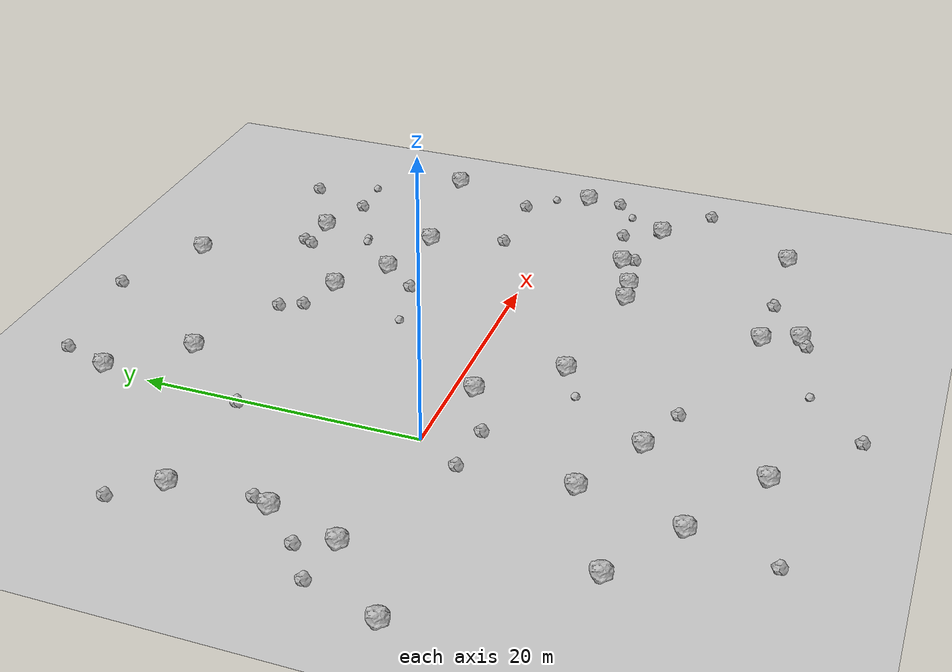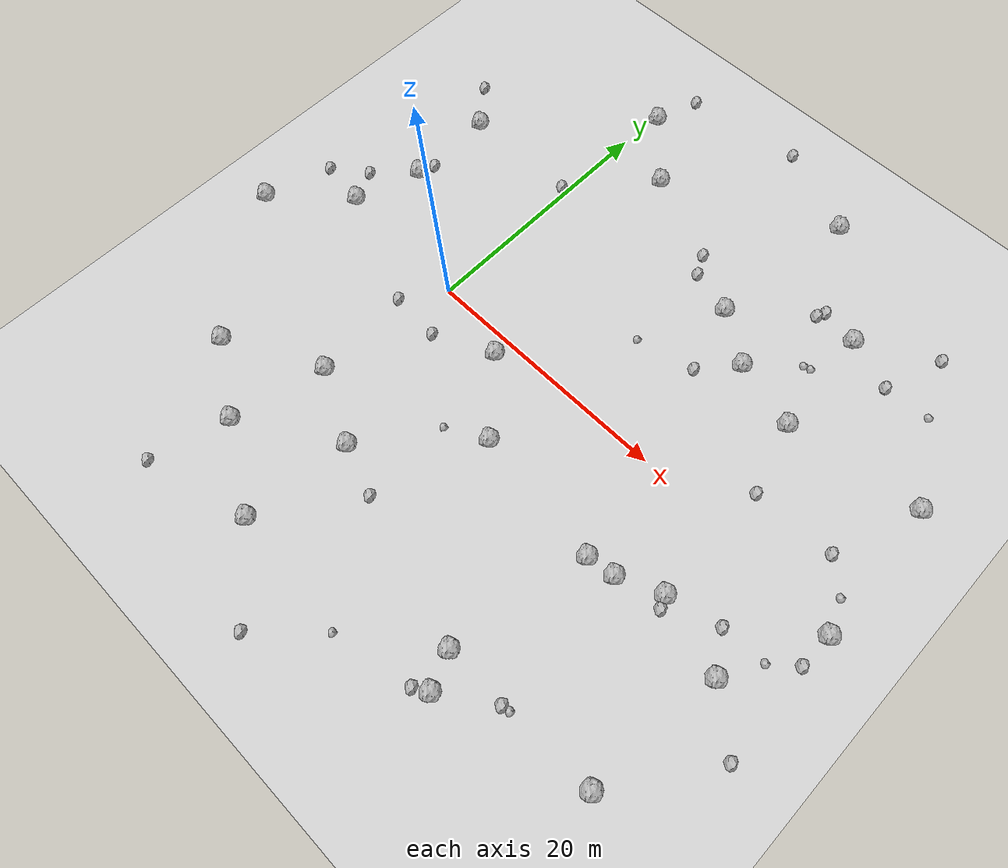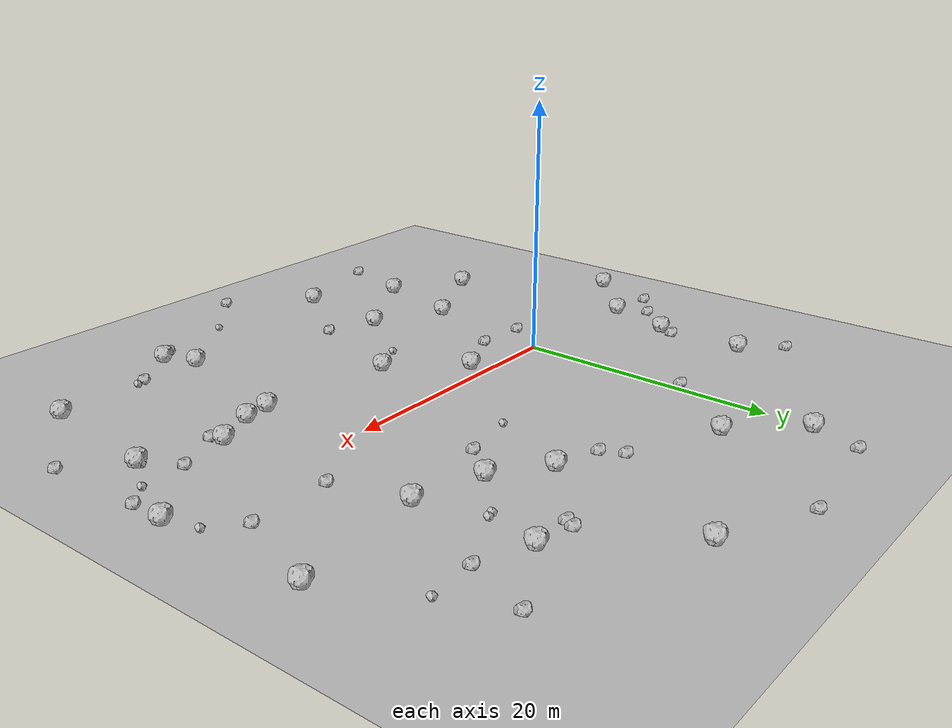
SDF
<sdf version="1.6">
 <world name="default">
  <include><uri>model://custom_ground</uri></include>
  <include><uri>model://sun</uri></include>
  <model name="rock1_0_0">
   <include><uri>model://rock1</uri><pose>0.4258869454625369 23.590470072798105 0.5 0 0 0</pose></include>
  </model>
  <model name="rock1_0_1">
   <include><uri>model://rock1</uri><pose>19.593265105103114 -18.298277100051422 0.5 0 0 0</pose></include>
  </model>
  <model name="rock1_0_2">
   <include><uri>model://rock1</uri><pose>-16.94204677330664 -4.062053096084782 0.5 0 0 0</pose></include>
  </model>
  <model name="rock1_0_3">
   <include><uri>model://rock1</uri><pose>35.865705066333454 10.217412509012853 0.5 0 0 0</pose></include>
  </model>
  <model name="rock1_0_4">
   <include><uri>model://rock1</uri><pose>4.186541190510887 -13.64281464550401 0.5 0 0 0</pose></include>
  </model>
  <model name="rock1_0_5">
   <include><uri>model://rock1</uri><pose>6.490779707301343 -1.3936061773794997 0.5 0 0 0</pose></include>
  </model>
  <model name="rock1_0_6">
   <include><uri>model://rock1</uri><pose>-1.532602621004461 -10.863521144166889 0.5 0 0 0</pose></include>
  </model>
  <model name="rock1_0_7">
   <include><uri>model://rock1</uri><pose>4.838600294089293 18.921575695923337 0.5 0 0 0</pose></include>
  </model>
  <model name="rock1_0_8">
   <include><uri>model://rock1</uri><pose>3.329555757908583 -21.830897044470593 0.5 0 0 0</pose></include>
  </model>
  <model name="rock1_0_9">
   <include><uri>model://rock1</uri><pose>11.104347467266237 -6.468998096717641 0.5 0 0 0</pose></include>
  </model>
  <model name="rock1_0_10">
   <include><uri>model://rock1</uri><pose>20.6625484039887 -20.903766457927855 0.5 0 0 0</pose></include>
  </model>
  <model name="rock1_0_11">
   <include><uri>model://rock1</uri><pose>17.987158346463147 25.176678825588972 0.5 0 0 0</pose></include>
  </model>
  <model name="rock1_0_12">
   <include><uri>model://rock1</uri><pose>25.463818453228534 8.960188977422256 0.5 0 0 0</pose></include>
  </model>
  <model name="rock1_0_13">
   <include><uri>model://rock1</uri><pose>-11.493227394271937 0.7471499509731174 0.5 0 0 0</pose></include>
  </model>
  <model name="rock1_0_14">
   <include><uri>model://rock1</uri><pose>-9.861687507869286 5.99554561775021 0.5 0 0 0</pose></include>
  </model>
  <model name="rock1_0_15">
   <include><uri>model://rock1</uri><pose>-8.946502069080402 -14.551512535602669 0.5 0 0 0</pose></include>
  </model>
  <model name="rock1_0_16">
   <include><uri>model://rock1</uri><pose>32.932538366023955 -7.910678944588451 0.5 0 0 0</pose></include>
  </model>
  <model name="rock1_0_17">
   <include><uri>model://rock1</uri><pose>31.746079077972198 -18.080295306039815 0.5 0 0 0</pose></include>
  </model>
  <model name="rock1_0_18">
   <include><uri>model://rock1</uri><pose>16.268638155541083 13.162128377371204 0.5 0 0 0</pose></include>
  </model>
  <model name="rock1_0_19">
   <include><uri>model://rock1</uri><pose>-9.906931575312157 12.962322399608539 0.5 0 0 0</pose></include>
  </model>
  <model name="rock1_0_20">
   <include><uri>model://rock1</uri><pose>-3.2731884722957467 -18.08198719907032 0.5 0 0 0</pose></include>
  </model>
  <model name="rock1_0_21">
   <include><uri>model://rock1</uri><pose>23.93849883882006 -7.529160160370676 0.5 0 0 0</pose></include>
  </model>
  <model name="rock1_0_22">
   <include><uri>model://rock1</uri><pose>20.147349211679114 10.437314945607682 0.5 0 0 0</pose></include>
  </model>
  <model name="rock1_0_23">
   <include><uri>model://rock1</uri><pose>21.786709616385103 -7.823435827018798 0.5 0 0 0</pose></include>
  </model>
  <model name="rock1_0_24">
   <include><uri>model://rock1</uri><pose>24.819069499509077 17.64397388436653 0.5 0 0 0</pose></include>
  </model>
  <model name="rock1_0_25">
   <include><uri>model://rock1</uri><pose>27.183809682259003 -6.147903388154386 0.5 0 0 0</pose></include>
  </model>
  <model name="rock1_0_26">
   <include><uri>model://rock1</uri><pose>36.44452362905187 -0.8603012842579325 0.5 0 0 0</pose></include>
  </model>
  <model name="rock2_0_0">
   <include><uri>model://rock2</uri><pose>36.74653862486327 -11.099335003345274 0.3 0 0 0</pose></include>
  </model>
  <model name="rock2_0_1">
   <include><uri>model://rock2</uri><pose>12.752762448049282 14.190941927365316 0.3 0 0 0</pose></include>
  </model>
  <model name="rock2_0_2">
   <include><uri>model://rock2</uri><pose>27.559285180786205 -7.045418463428039 0.3 0 0 0</pose></include>
  </model>
  <model name="rock2_0_3">
   <include><uri>model://rock2</uri><pose>-12.643349906243518 3.159417456817927 0.3 0 0 0</pose></include>
  </model>
  <model name="rock2_0_4">
   <include><uri>model://rock2</uri><pose>10.973704333424198 28.373084472510897 0.3 0 0 0</pose></include>
  </model>
  <model name="rock2_0_5">
   <include><uri>model://rock2</uri><pose>8.173398960551783 -15.024386599141245 0.3 0 0 0</pose></include>
  </model>
  <model name="rock2_0_6">
   <include><uri>model://rock2</uri><pose>36.374686372238365 -3.545614506958067 0.3 0 0 0</pose></include>
  </model>
  <model name="rock2_0_7">
   <include><uri>model://rock2</uri><pose>33.36197876264485 3.6057587444407986 0.3 0 0 0</pose></include>
  </model>
  <model name="rock2_0_8">
   <include><uri>model://rock2</uri><pose>-12.417822318014144 15.921073528240115 0.3 0 0 0</pose></include>
  </model>
  <model name="rock2_0_9">
   <include><uri>model://rock2</uri><pose>24.39194947493847 -18.37083913707145 0.3 0 0 0</pose></include>
  </model>
  <model name="rock2_0_10">
   <include><uri>model://rock2</uri><pose>11.95122738227418 15.795883297621657 0.3 0 0 0</pose></include>
  </model>
  <model name="rock2_0_11">
   <include><uri>model://rock2</uri><pose>-2.1000453734531597 -3.190249576710645 0.3 0 0 0</pose></include>
  </model>
  <model name="rock2_0_12">
   <include><uri>model://rock2</uri><pose>1.9434485988709191 -3.484406953018258 0.3 0 0 0</pose></include>
  </model>
  <model name="rock2_0_13">
   <include><uri>model://rock2</uri><pose>-15.331597219395531 1.2382849415534807 0.3 0 0 0</pose></include>
  </model>
  <model name="rock2_0_14">
   <include><uri>model://rock2</uri><pose>17.819777052576868 7.75673685936431 0.3 0 0 0</pose></include>
  </model>
  <model name="rock2_0_15">
   <include><uri>model://rock2</uri><pose>9.129438965702917 -26.823179746083493 0.3 0 0 0</pose></include>
  </model>
  <model name="rock2_0_16">
   <include><uri>model://rock2</uri><pose>27.084671648839304 3.442530866274076 0.3 0 0 0</pose></include>
  </model>
  <model name="rock2_0_17">
   <include><uri>model://rock2</uri><pose>-9.387508849886384 7.2922011991056195 0.3 0 0 0</pose></include>
  </model>
  <model name="rock2_0_18">
   <include><uri>model://rock2</uri><pose>-4.93460723393728 -24.02176802981003 0.3 0 0 0</pose></include>
  </model>
  <model name="rock2_0_19">
   <include><uri>model://rock2</uri><pose>31.1931700446193 -5.173472885419194 0.3 0 0 0</pose></include>
  </model>
  <model name="rock2_0_20">
   <include><uri>model://rock2</uri><pose>30.466649509145284 20.867211277838777 0.3 0 0 0</pose></include>
  </model>
  <model name="rock2_0_21">
   <include><uri>model://rock2</uri><pose>19.56059635587355 -21.523302012057723 0.3 0 0 0</pose></include>
  </model>
  <model name="rock2_0_22">
   <include><uri>model://rock2</uri><pose>28.769339338102625 16.19908620753985 0.3 0 0 0</pose></include>
  </model>
  <model name="rock2_0_23">
   <include><uri>model://rock2</uri><pose>1.6229938029803535 27.209797742083033 0.3 0 0 0</pose></include>
  </model>
  <model name="rock2_0_24">
   <include><uri>model://rock2</uri><pose>21.557049382136988 17.556551728569723 0.3 0 0 0</pose></include>
  </model>
  <model name="rock2_0_25">
   <include><uri>model://rock2</uri><pose>-0.48715334006117317 12.970979095454737 0.3 0 0 0</pose></include>
  </model>
  <model name="rock2_0_26">
   <include><uri>model://rock2</uri><pose>21.881704164928394 18.24009109998302 0.3 0 0 0</pose></include>
  </model>
  <model name="rock3_0_0">
   <include><uri>model://rock3</uri><pose>13.383824211055753 -22.813315305171542 0.2 0 0 0</pose></include>
  </model>
  <model name="rock3_0_1">
   <include><uri>model://rock3</uri><pose>23.941809988336956 13.653523587089886 0.2 0 0 0</pose></include>
  </model>
  <model name="rock3_0_2">
   <include><uri>model://rock3</uri><pose>8.039029673605334 -8.04499058082326 0.2 0 0 0</pose></include>
  </model>
  <model name="rock3_0_3">
   <include><uri>model://rock3</uri><pose>34.578693694220334 -5.07106518549832 0.2 0 0 0</pose></include>
  </model>
  <model name="rock3_0_4">
   <include><uri>model://rock3</uri><pose>13.185509630365395 6.72332635514762 0.2 0 0 0</pose></include>
  </model>
  <model name="rock3_0_5">
   <include><uri>model://rock3</uri><pose>32.34545775779453 16.35381098545455 0.2 0 0 0</pose></include>
  </model>
  <model name="rock3_0_6">
   <include><uri>model://rock3</uri><pose>35.52950941920636 1.606861945583411 0.2 0 0 0</pose></include>
  </model>
  <model name="rock3_0_7">
   <include><uri>model://rock3</uri><pose>24.992397665416647 -18.302523669874486 0.2 0 0 0</pose></include>
  </model>
  <model name="rock3_0_8">
   <include><uri>model://rock3</uri><pose>23.412758651232863 13.51683518239436 0.2 0 0 0</pose></include>
  </model>
  <model name="rock3_0_9">
   <include><uri>model://rock3</uri><pose>32.69777951613009 -7.598579896960352 0.2 0 0 0</pose></include>
  </model>
 </world>
</sdf>
